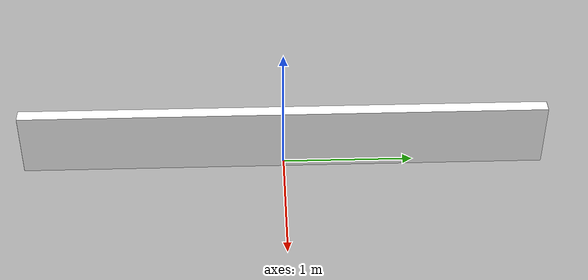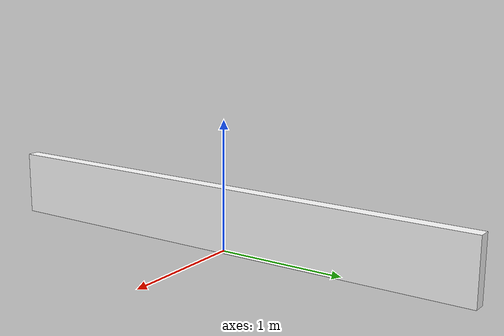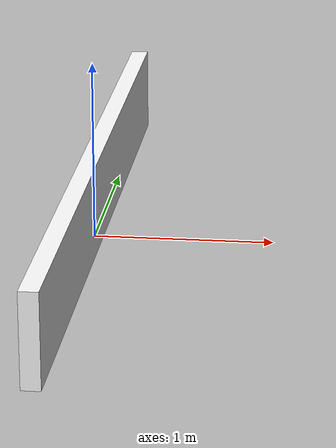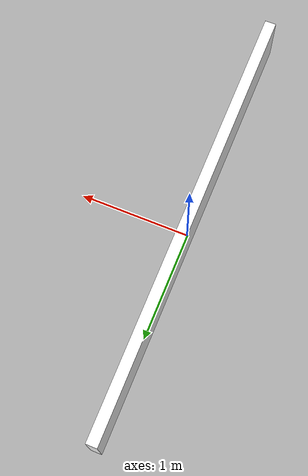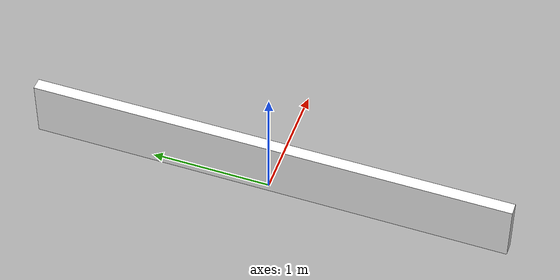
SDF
<?xml version='1.0'?>
<sdf version='1.4'>
    <model name='walls'>
    <static>true</static>

        <link name='link0'>
            <pose>0 0 0.25 0 0 0</pose>

            <visual name='visual'>
                <geometry>
                    <box>
                        <size>0.1 4.0 0.5</size>
                    </box>
                </geometry>
                <material>
                    <ambient>1 1 1 1</ambient>
                    <diffuse>1 1 1 1</diffuse>
                    <specular>0.5 0.5 0.5 1</specular>
                    <emissive>0 0 0 1</emissive>
                </material>
            </visual>

            <collision name='collision'>
                <pose>0 0 0 0 0 0</pose>
                <geometry>
                    <box>
                        <size>0.1 4.0 0.5</size>
                    </box>
                </geometry>
            </collision>

        </link>

    </model>

</sdf>
